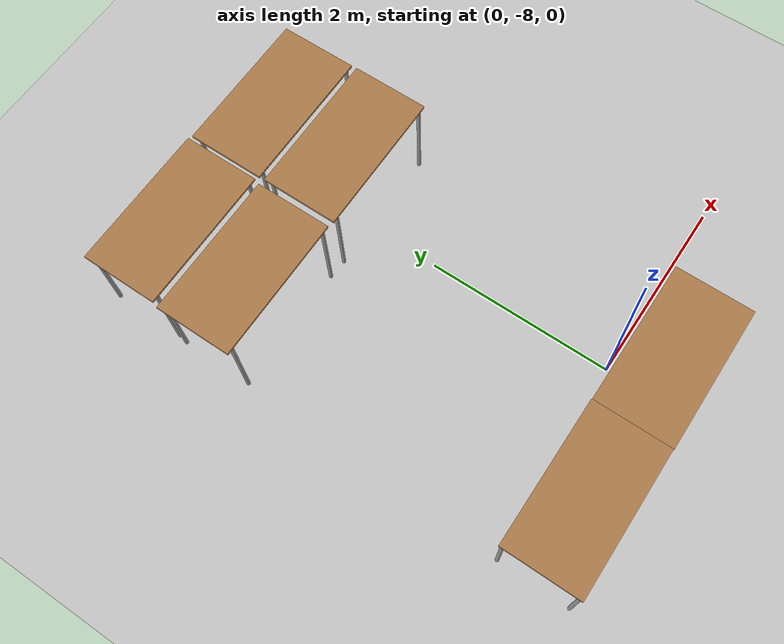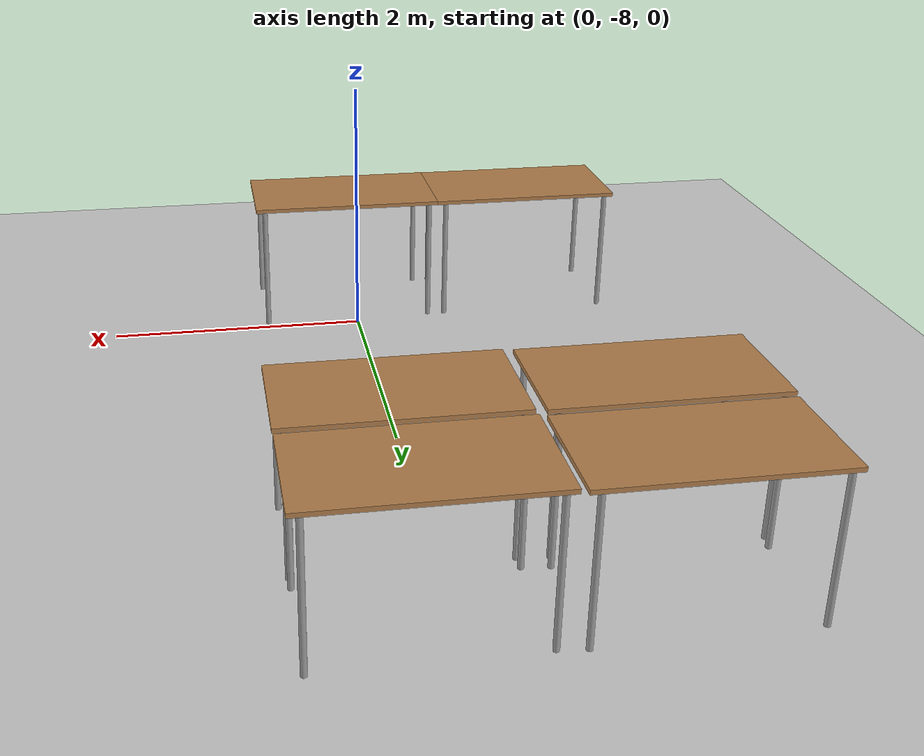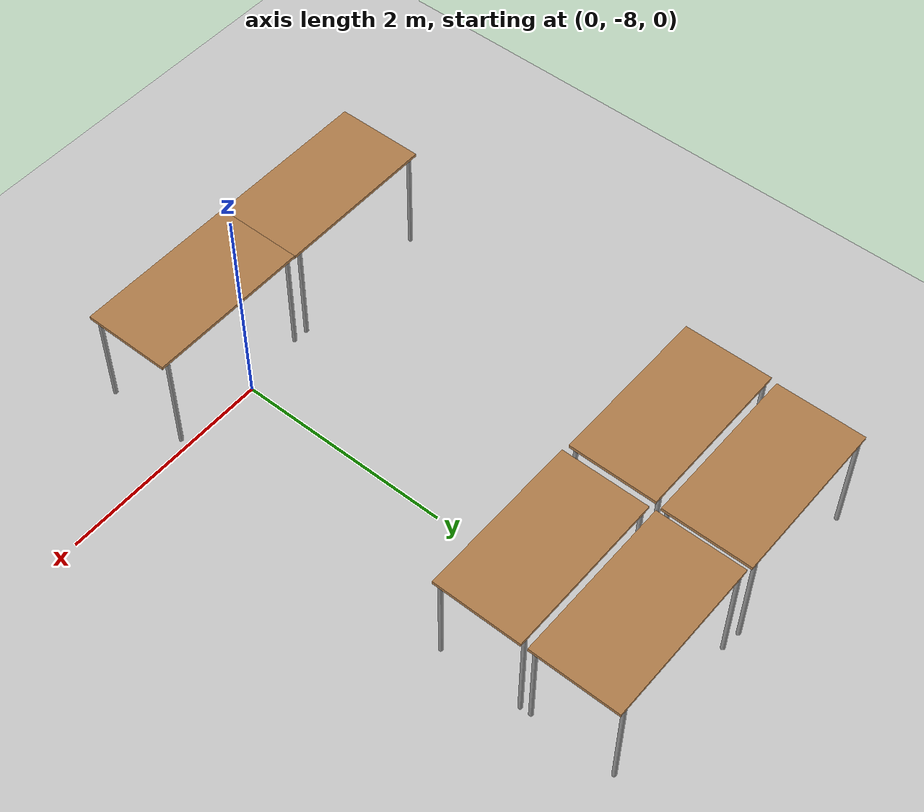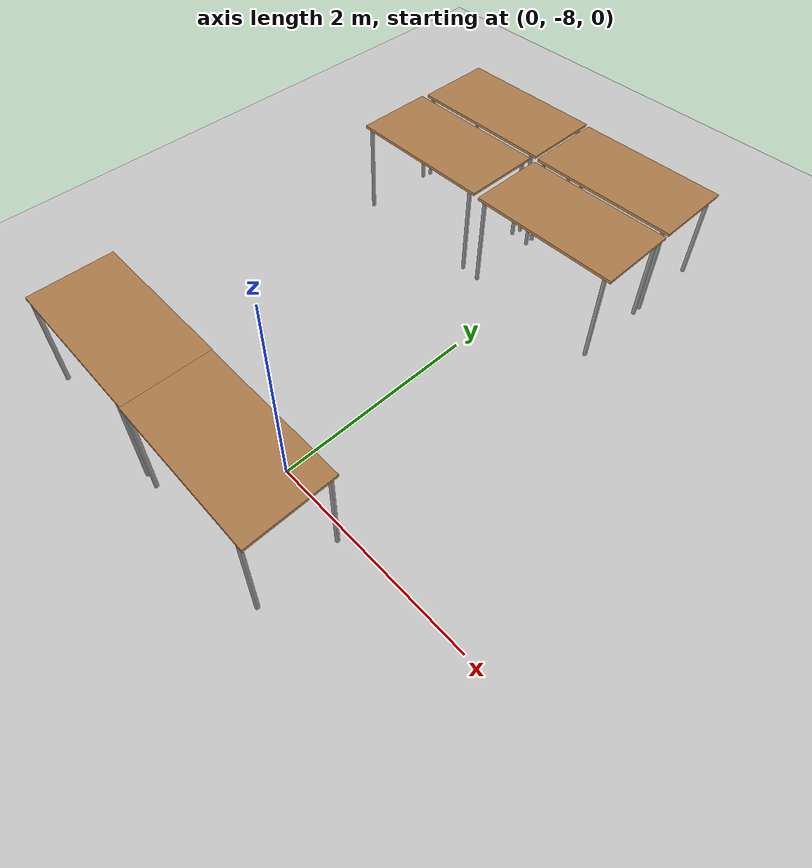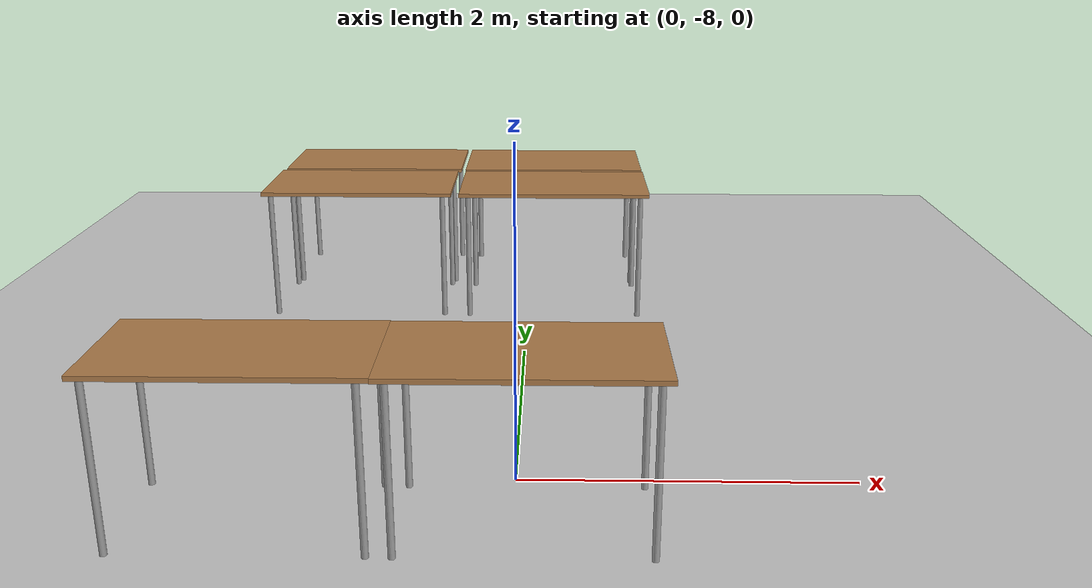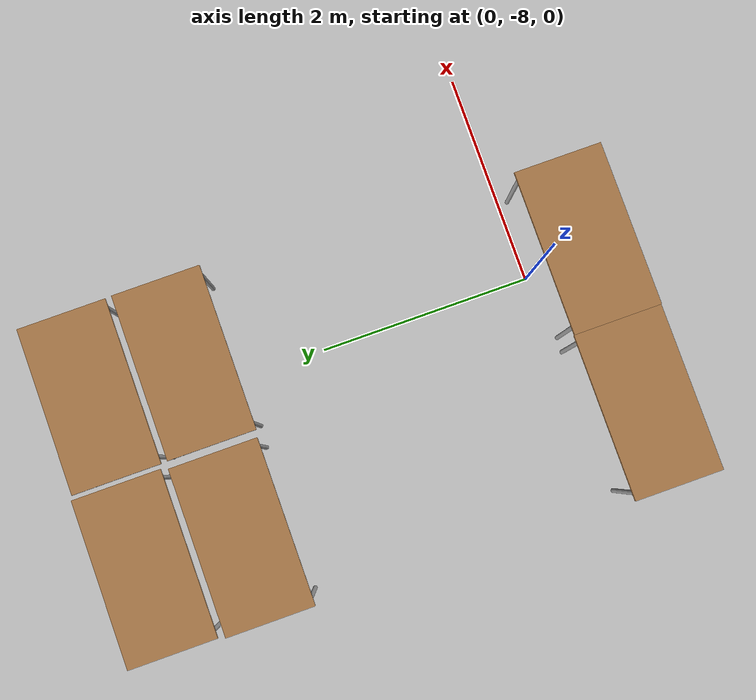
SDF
<sdf version="1.6">
 <world name="default">
  <model name="ground_plane">
   <static>1</static>
   <link name="link">
    <collision name="collision">
     <geometry><plane><normal>0 0 1</normal><size>100 100</size></plane></geometry>
     <surface>
      <contact><collide_bitmask>65535</collide_bitmask></contact>
      <friction><ode><mu>100</mu><mu2>50</mu2></ode></friction>
     </surface>
    </collision>
    <visual name="visual">
     <cast_shadows>0</cast_shadows>
     <geometry><plane><normal>0 0 1</normal><size>100 100</size></plane></geometry>
     <material>
      <script><uri>file://media/materials/scripts/gazebo.material</uri><name>Gazebo/Grey</name></script>
     </material>
    </visual>
   </link>
  </model>
  <model name="table_1">
   <static>1</static>
   <link name="link">
    <collision name="surface">
     <pose>0 0 1 0 -0 0</pose>
     <geometry><box><size>1.5 0.8 0.03</size></box></geometry>
     <surface><friction><ode><mu>0.6</mu><mu2>0.6</mu2></ode></friction></surface>
    </collision>
    <visual name="visual1">
     <pose>0 0 1 0 -0 0</pose>
     <geometry><box><size>1.5 0.8 0.03</size></box></geometry>
     <material>
      <script><uri>file://media/materials/scripts/gazebo.material</uri><name>Gazebo/Wood</name></script>
     </material>
    </visual>
    <collision name="front_left_leg">
     <pose>0.68 0.38 0.5 0 -0 0</pose>
     <geometry><cylinder><radius>0.02</radius><length>1</length></cylinder></geometry>
    </collision>
    <visual name="front_left_leg">
     <pose>0.68 0.38 0.5 0 -0 0</pose>
     <geometry><cylinder><radius>0.02</radius><length>1</length></cylinder></geometry>
     <material>
      <script><uri>file://media/materials/scripts/gazebo.material</uri><name>Gazebo/Grey</name></script>
     </material>
    </visual>
    <collision name="front_right_leg">
     <pose>0.68 -0.38 0.5 0 -0 0</pose>
     <geometry><cylinder><radius>0.02</radius><length>1</length></cylinder></geometry>
    </collision>
    <visual name="front_right_leg">
     <pose>0.68 -0.38 0.5 0 -0 0</pose>
     <geometry><cylinder><radius>0.02</radius><length>1</length></cylinder></geometry>
     <material>
      <script><uri>file://media/materials/scripts/gazebo.material</uri><name>Gazebo/Grey</name></script>
     </material>
    </visual>
    <collision name="back_right_leg">
     <pose>-0.68 -0.38 0.5 0 -0 0</pose>
     <geometry><cylinder><radius>0.02</radius><length>1</length></cylinder></geometry>
    </collision>
    <visual name="back_right_leg">
     <pose>-0.68 -0.38 0.5 0 -0 0</pose>
     <geometry><cylinder><radius>0.02</radius><length>1</length></cylinder></geometry>
     <material>
      <script><uri>file://media/materials/scripts/gazebo.material</uri><name>Gazebo/Grey</name></script>
     </material>
    </visual>
    <collision name="back_left_leg">
     <pose>-0.68 0.38 0.5 0 -0 0</pose>
     <geometry><cylinder><radius>0.02</radius><length>1</length></cylinder></geometry>
    </collision>
    <visual name="back_left_leg">
     <pose>-0.68 0.38 0.5 0 -0 0</pose>
     <geometry><cylinder><radius>0.02</radius><length>1</length></cylinder></geometry>
     <material>
      <script><uri>file://media/materials/scripts/gazebo.material</uri><name>Gazebo/Grey</name></script>
     </material>
    </visual>
   </link>
   <pose>0.208584 -3.97961 0 0 -0 0</pose>
  </model>
  <model name="table_2">
   <static>1</static>
   <link name="link">
    <collision name="surface">
     <pose>0 0 1 0 -0 0</pose>
     <geometry><box><size>1.5 0.8 0.03</size></box></geometry>
     <surface><friction><ode><mu>0.6</mu><mu2>0.6</mu2></ode></friction></surface>
    </collision>
    <visual name="visual1">
     <pose>0 0 1 0 -0 0</pose>
     <geometry><box><size>1.5 0.8 0.03</size></box></geometry>
     <material>
      <script><uri>file://media/materials/scripts/gazebo.material</uri><name>Gazebo/Wood</name></script>
     </material>
    </visual>
    <collision name="front_left_leg">
     <pose>0.68 0.38 0.5 0 -0 0</pose>
     <geometry><cylinder><radius>0.02</radius><length>1</length></cylinder></geometry>
    </collision>
    <visual name="front_left_leg">
     <pose>0.68 0.38 0.5 0 -0 0</pose>
     <geometry><cylinder><radius>0.02</radius><length>1</length></cylinder></geometry>
     <material>
      <script><uri>file://media/materials/scripts/gazebo.material</uri><name>Gazebo/Grey</name></script>
     </material>
    </visual>
    <collision name="front_right_leg">
     <pose>0.68 -0.38 0.5 0 -0 0</pose>
     <geometry><cylinder><radius>0.02</radius><length>1</length></cylinder></geometry>
    </collision>
    <visual name="front_right_leg">
     <pose>0.68 -0.38 0.5 0 -0 0</pose>
     <geometry><cylinder><radius>0.02</radius><length>1</length></cylinder></geometry>
     <material>
      <script><uri>file://media/materials/scripts/gazebo.material</uri><name>Gazebo/Grey</name></script>
     </material>
    </visual>
    <collision name="back_right_leg">
     <pose>-0.68 -0.38 0.5 0 -0 0</pose>
     <geometry><cylinder><radius>0.02</radius><length>1</length></cylinder></geometry>
    </collision>
    <visual name="back_right_leg">
     <pose>-0.68 -0.38 0.5 0 -0 0</pose>
     <geometry><cylinder><radius>0.02</radius><length>1</length></cylinder></geometry>
     <material>
      <script><uri>file://media/materials/scripts/gazebo.material</uri><name>Gazebo/Grey</name></script>
     </material>
    </visual>
    <collision name="back_left_leg">
     <pose>-0.68 0.38 0.5 0 -0 0</pose>
     <geometry><cylinder><radius>0.02</radius><length>1</length></cylinder></geometry>
    </collision>
    <visual name="back_left_leg">
     <pose>-0.68 0.38 0.5 0 -0 0</pose>
     <geometry><cylinder><radius>0.02</radius><length>1</length></cylinder></geometry>
     <material>
      <script><uri>file://media/materials/scripts/gazebo.material</uri><name>Gazebo/Grey</name></script>
     </material>
    </visual>
   </link>
   <pose>0.212852 -4.83597 0 0 -0 0</pose>
  </model>
  <model name="table_5">
   <static>1</static>
   <link name="link">
    <collision name="surface">
     <pose>0 0 1 0 -0 0</pose>
     <geometry><box><size>1.5 0.8 0.03</size></box></geometry>
     <surface><friction><ode><mu>0.6</mu><mu2>0.6</mu2></ode></friction></surface>
    </collision>
    <visual name="visual1">
     <pose>0 0 1 0 -0 0</pose>
     <geometry><box><size>1.5 0.8 0.03</size></box></geometry>
     <material>
      <script><uri>file://media/materials/scripts/gazebo.material</uri><name>Gazebo/Wood</name></script>
     </material>
    </visual>
    <collision name="front_left_leg">
     <pose>0.68 0.38 0.5 0 -0 0</pose>
     <geometry><cylinder><radius>0.02</radius><length>1</length></cylinder></geometry>
    </collision>
    <visual name="front_left_leg">
     <pose>0.68 0.38 0.5 0 -0 0</pose>
     <geometry><cylinder><radius>0.02</radius><length>1</length></cylinder></geometry>
     <material>
      <script><uri>file://media/materials/scripts/gazebo.material</uri><name>Gazebo/Grey</name></script>
     </material>
    </visual>
    <collision name="front_right_leg">
     <pose>0.68 -0.38 0.5 0 -0 0</pose>
     <geometry><cylinder><radius>0.02</radius><length>1</length></cylinder></geometry>
    </collision>
    <visual name="front_right_leg">
     <pose>0.68 -0.38 0.5 0 -0 0</pose>
     <geometry><cylinder><radius>0.02</radius><length>1</length></cylinder></geometry>
     <material>
      <script><uri>file://media/materials/scripts/gazebo.material</uri><name>Gazebo/Grey</name></script>
     </material>
    </visual>
    <collision name="back_right_leg">
     <pose>-0.68 -0.38 0.5 0 -0 0</pose>
     <geometry><cylinder><radius>0.02</radius><length>1</length></cylinder></geometry>
    </collision>
    <visual name="back_right_leg">
     <pose>-0.68 -0.38 0.5 0 -0 0</pose>
     <geometry><cylinder><radius>0.02</radius><length>1</length></cylinder></geometry>
     <material>
      <script><uri>file://media/materials/scripts/gazebo.material</uri><name>Gazebo/Grey</name></script>
     </material>
    </visual>
    <collision name="back_left_leg">
     <pose>-0.68 0.38 0.5 0 -0 0</pose>
     <geometry><cylinder><radius>0.02</radius><length>1</length></cylinder></geometry>
    </collision>
    <visual name="back_left_leg">
     <pose>-0.68 0.38 0.5 0 -0 0</pose>
     <geometry><cylinder><radius>0.02</radius><length>1</length></cylinder></geometry>
     <material>
      <script><uri>file://media/materials/scripts/gazebo.material</uri><name>Gazebo/Grey</name></script>
     </material>
    </visual>
   </link>
   <pose>0.063502 -8.46912 0 0 -0 0</pose>
  </model>
  <model name="table_6">
   <static>1</static>
   <link name="link">
    <collision name="surface">
     <pose>0 0 1 0 -0 0</pose>
     <geometry><box><size>1.5 0.8 0.03</size></box></geometry>
     <surface><friction><ode><mu>0.6</mu><mu2>0.6</mu2></ode></friction></surface>
    </collision>
    <visual name="visual1">
     <pose>0 0 1 0 -0 0</pose>
     <geometry><box><size>1.5 0.8 0.03</size></box></geometry>
     <material>
      <script><uri>file://media/materials/scripts/gazebo.material</uri><name>Gazebo/Wood</name></script>
     </material>
    </visual>
    <collision name="front_left_leg">
     <pose>0.68 0.38 0.5 0 -0 0</pose>
     <geometry><cylinder><radius>0.02</radius><length>1</length></cylinder></geometry>
    </collision>
    <visual name="front_left_leg">
     <pose>0.68 0.38 0.5 0 -0 0</pose>
     <geometry><cylinder><radius>0.02</radius><length>1</length></cylinder></geometry>
     <material>
      <script><uri>file://media/materials/scripts/gazebo.material</uri><name>Gazebo/Grey</name></script>
     </material>
    </visual>
    <collision name="front_right_leg">
     <pose>0.68 -0.38 0.5 0 -0 0</pose>
     <geometry><cylinder><radius>0.02</radius><length>1</length></cylinder></geometry>
    </collision>
    <visual name="front_right_leg">
     <pose>0.68 -0.38 0.5 0 -0 0</pose>
     <geometry><cylinder><radius>0.02</radius><length>1</length></cylinder></geometry>
     <material>
      <script><uri>file://media/materials/scripts/gazebo.material</uri><name>Gazebo/Grey</name></script>
     </material>
    </visual>
    <collision name="back_right_leg">
     <pose>-0.68 -0.38 0.5 0 -0 0</pose>
     <geometry><cylinder><radius>0.02</radius><length>1</length></cylinder></geometry>
    </collision>
    <visual name="back_right_leg">
     <pose>-0.68 -0.38 0.5 0 -0 0</pose>
     <geometry><cylinder><radius>0.02</radius><length>1</length></cylinder></geometry>
     <material>
      <script><uri>file://media/materials/scripts/gazebo.material</uri><name>Gazebo/Grey</name></script>
     </material>
    </visual>
    <collision name="back_left_leg">
     <pose>-0.68 0.38 0.5 0 -0 0</pose>
     <geometry><cylinder><radius>0.02</radius><length>1</length></cylinder></geometry>
    </collision>
    <visual name="back_left_leg">
     <pose>-0.68 0.38 0.5 0 -0 0</pose>
     <geometry><cylinder><radius>0.02</radius><length>1</length></cylinder></geometry>
     <material>
      <script><uri>file://media/materials/scripts/gazebo.material</uri><name>Gazebo/Grey</name></script>
     </material>
    </visual>
   </link>
   <pose>-1.4363 -8.46318 0 0 -0 0</pose>
  </model>
  <model name="table_9">
   <static>1</static>
   <link name="link">
    <collision name="surface">
     <pose>0 0 1 0 -0 0</pose>
     <geometry><box><size>1.5 0.8 0.03</size></box></geometry>
     <surface><friction><ode><mu>0.6</mu><mu2>0.6</mu2></ode></friction></surface>
    </collision>
    <visual name="visual1">
     <pose>0 0 1 0 -0 0</pose>
     <geometry><box><size>1.5 0.8 0.03</size></box></geometry>
     <material>
      <script><uri>file://media/materials/scripts/gazebo.material</uri><name>Gazebo/Wood</name></script>
     </material>
    </visual>
    <collision name="front_left_leg">
     <pose>0.68 0.38 0.5 0 -0 0</pose>
     <geometry><cylinder><radius>0.02</radius><length>1</length></cylinder></geometry>
    </collision>
    <visual name="front_left_leg">
     <pose>0.68 0.38 0.5 0 -0 0</pose>
     <geometry><cylinder><radius>0.02</radius><length>1</length></cylinder></geometry>
     <material>
      <script><uri>file://media/materials/scripts/gazebo.material</uri><name>Gazebo/Grey</name></script>
     </material>
    </visual>
    <collision name="front_right_leg">
     <pose>0.68 -0.38 0.5 0 -0 0</pose>
     <geometry><cylinder><radius>0.02</radius><length>1</length></cylinder></geometry>
    </collision>
    <visual name="front_right_leg">
     <pose>0.68 -0.38 0.5 0 -0 0</pose>
     <geometry><cylinder><radius>0.02</radius><length>1</length></cylinder></geometry>
     <material>
      <script><uri>file://media/materials/scripts/gazebo.material</uri><name>Gazebo/Grey</name></script>
     </material>
    </visual>
    <collision name="back_right_leg">
     <pose>-0.68 -0.38 0.5 0 -0 0</pose>
     <geometry><cylinder><radius>0.02</radius><length>1</length></cylinder></geometry>
    </collision>
    <visual name="back_right_leg">
     <pose>-0.68 -0.38 0.5 0 -0 0</pose>
     <geometry><cylinder><radius>0.02</radius><length>1</length></cylinder></geometry>
     <material>
      <script><uri>file://media/materials/scripts/gazebo.material</uri><name>Gazebo/Grey</name></script>
     </material>
    </visual>
    <collision name="back_left_leg">
     <pose>-0.68 0.38 0.5 0 -0 0</pose>
     <geometry><cylinder><radius>0.02</radius><length>1</length></cylinder></geometry>
    </collision>
    <visual name="back_left_leg">
     <pose>-0.68 0.38 0.5 0 -0 0</pose>
     <geometry><cylinder><radius>0.02</radius><length>1</length></cylinder></geometry>
     <material>
      <script><uri>file://media/materials/scripts/gazebo.material</uri><name>Gazebo/Grey</name></script>
     </material>
    </visual>
   </link>
   <pose>-1.35243 -4.82062 0 0 -0 0</pose>
  </model>
  <model name="table_10">
   <static>1</static>
   <link name="link">
    <collision name="surface">
     <pose>0 0 1 0 -0 0</pose>
     <geometry><box><size>1.5 0.8 0.03</size></box></geometry>
     <surface><friction><ode><mu>0.6</mu><mu2>0.6</mu2></ode></friction></surface>
    </collision>
    <visual name="visual1">
     <pose>0 0 1 0 -0 0</pose>
     <geometry><box><size>1.5 0.8 0.03</size></box></geometry>
     <material>
      <script><uri>file://media/materials/scripts/gazebo.material</uri><name>Gazebo/Wood</name></script>
     </material>
    </visual>
    <collision name="front_left_leg">
     <pose>0.68 0.38 0.5 0 -0 0</pose>
     <geometry><cylinder><radius>0.02</radius><length>1</length></cylinder></geometry>
    </collision>
    <visual name="front_left_leg">
     <pose>0.68 0.38 0.5 0 -0 0</pose>
     <geometry><cylinder><radius>0.02</radius><length>1</length></cylinder></geometry>
     <material>
      <script><uri>file://media/materials/scripts/gazebo.material</uri><name>Gazebo/Grey</name></script>
     </material>
    </visual>
    <collision name="front_right_leg">
     <pose>0.68 -0.38 0.5 0 -0 0</pose>
     <geometry><cylinder><radius>0.02</radius><length>1</length></cylinder></geometry>
    </collision>
    <visual name="front_right_leg">
     <pose>0.68 -0.38 0.5 0 -0 0</pose>
     <geometry><cylinder><radius>0.02</radius><length>1</length></cylinder></geometry>
     <material>
      <script><uri>file://media/materials/scripts/gazebo.material</uri><name>Gazebo/Grey</name></script>
     </material>
    </visual>
    <collision name="back_right_leg">
     <pose>-0.68 -0.38 0.5 0 -0 0</pose>
     <geometry><cylinder><radius>0.02</radius><length>1</length></cylinder></geometry>
    </collision>
    <visual name="back_right_leg">
     <pose>-0.68 -0.38 0.5 0 -0 0</pose>
     <geometry><cylinder><radius>0.02</radius><length>1</length></cylinder></geometry>
     <material>
      <script><uri>file://media/materials/scripts/gazebo.material</uri><name>Gazebo/Grey</name></script>
     </material>
    </visual>
    <collision name="back_left_leg">
     <pose>-0.68 0.38 0.5 0 -0 0</pose>
     <geometry><cylinder><radius>0.02</radius><length>1</length></cylinder></geometry>
    </collision>
    <visual name="back_left_leg">
     <pose>-0.68 0.38 0.5 0 -0 0</pose>
     <geometry><cylinder><radius>0.02</radius><length>1</length></cylinder></geometry>
     <material>
      <script><uri>file://media/materials/scripts/gazebo.material</uri><name>Gazebo/Grey</name></script>
     </material>
    </visual>
   </link>
   <pose>-1.33048 -3.9602 0 0 -0 0</pose>
  </model>
 </world>
</sdf>
